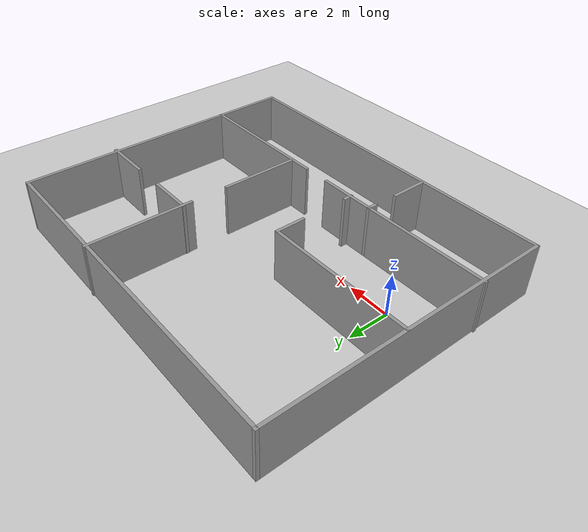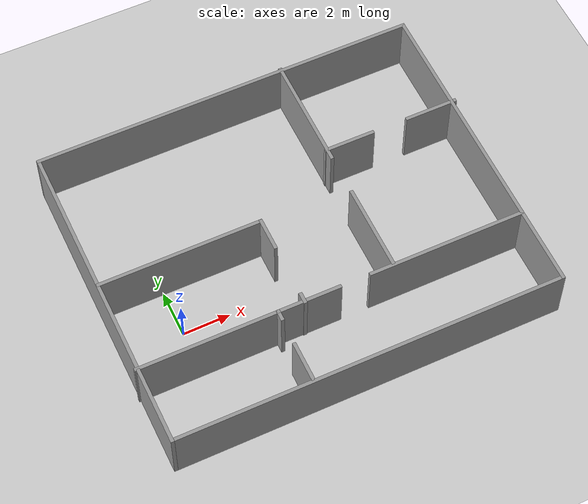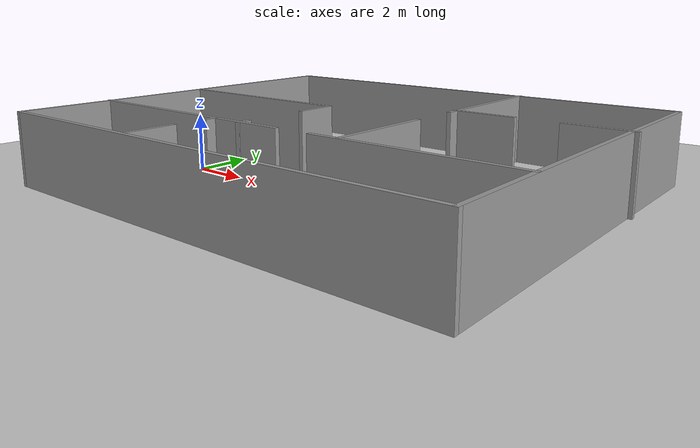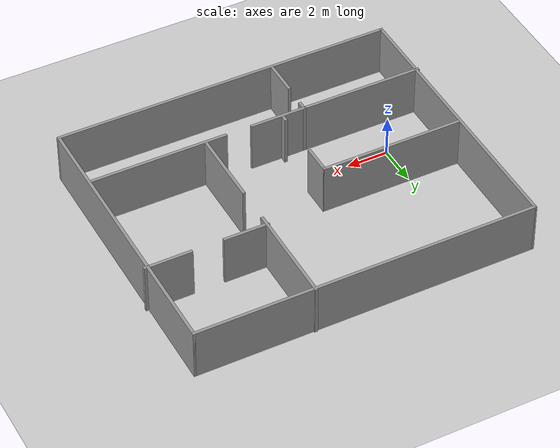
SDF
<sdf version="1.7">
 <world name="default">
  <light name="sun" type="directional">
   <pose>0 0 10 0 -0 0</pose>
   <diffuse>0.8 0.8 0.8 1</diffuse>
   <specular>0.2 0.2 0.2 1</specular>
   <attenuation>
    <range>1000</range>
    <constant>0.9</constant>
    <linear>0.01</linear>
    <quadratic>0.001</quadratic>
   </attenuation>
   <direction>-0.5 0.1 -0.9</direction>
   <spot><inner_angle>0</inner_angle><outer_angle>0</outer_angle><falloff>0</falloff></spot>
  </light>
  <model name="ground_plane">
   <static>1</static>
   <link name="link">
    <collision name="collision">
     <geometry><plane><normal>0 0 1</normal><size>100 100</size></plane></geometry>
     <surface>
      <contact><collide_bitmask>65535</collide_bitmask></contact>
      <friction><ode><mu>100</mu><mu2>50</mu2></ode></friction>
     </surface>
    </collision>
    <visual name="visual">
     <cast_shadows>0</cast_shadows>
     <geometry><plane><normal>0 0 1</normal><size>100 100</size></plane></geometry>
     <material>
      <script><uri>file://media/materials/scripts/gazebo.material</uri><name>Gazebo/Grey</name></script>
     </material>
    </visual>
   </link>
  </model>
  <gravity>0 0 -9.8</gravity>
  <magnetic_field>6e-06 2.3e-05 -4.2e-05</magnetic_field>
  <atmosphere type="adiabatic"/>
  <physics type="ode">
   <max_step_size>0.001</max_step_size>
   <real_time_factor>1</real_time_factor>
   <real_time_update_rate>1000</real_time_update_rate>
  </physics>
  <scene><ambient>0.4 0.4 0.4 1</ambient><background>0.7 0.7 0.7 1</background><shadows>1</shadows></scene>
  <audio><device>default</device></audio>
  <spherical_coordinates>
   <surface_model>EARTH_WGS84</surface_model>
   <latitude_deg>0</latitude_deg>
   <longitude_deg>0</longitude_deg>
   <elevation>0</elevation>
   <heading_deg>0</heading_deg>
  </spherical_coordinates>
  <model name="Flat">
   <pose>5.64456 1.61458 0 0 -0 0</pose>
   <link name="Wall_1">
    <collision name="Wall_1_Collision">
     <geometry><box><size>16.5 0.15 2.5</size></box></geometry>
     <pose>0 0 1.25 0 -0 0</pose>
    </collision>
    <visual name="Wall_1_Visual">
     <pose>0 0 1.25 0 -0 0</pose>
     <geometry><box><size>16.5 0.15 2.5</size></box></geometry>
     <material>
      <script><uri>file://media/materials/scripts/gazebo.material</uri><name>Gazebo/Grey</name></script>
      <ambient>1 1 1 1</ambient>
     </material>
     <meta><layer>0</layer></meta>
    </visual>
    <pose>-0.031794 6.77215 0 0 -0 0</pose>
   </link>
   <link name="Wall_10">
    <collision name="Wall_10_Collision">
     <geometry><box><size>0.5 0.15 2.5</size></box></geometry>
     <pose>0 0 1.25 0 -0 0</pose>
    </collision>
    <visual name="Wall_10_Visual">
     <pose>0 0 1.25 0 -0 0</pose>
     <geometry><box><size>0.5 0.15 2.5</size></box></geometry>
     <material>
      <script><uri>file://media/materials/scripts/gazebo.material</uri><name>Gazebo/Grey</name></script>
      <ambient>1 1 1 1</ambient>
     </material>
     <meta><layer>0</layer></meta>
    </visual>
    <pose>-2.42245 -3.74352 0 0 -0 -1.5708</pose>
   </link>
   <link name="Wall_15">
    <collision name="Wall_15_Collision">
     <geometry><box><size>1.75 0.15 2.5</size></box></geometry>
     <pose>0 0 1.25 0 -0 0</pose>
    </collision>
    <visual name="Wall_15_Visual">
     <pose>0 0 1.25 0 -0 0</pose>
     <geometry><box><size>1.75 0.15 2.5</size></box></geometry>
     <material>
      <script><uri>file://media/materials/scripts/gazebo.material</uri><name>Gazebo/Grey</name></script>
      <ambient>1 1 1 1</ambient>
     </material>
     <meta><layer>0</layer></meta>
    </visual>
    <pose>-2.46159 -5.91852 0 0 -0 1.5708</pose>
   </link>
   <link name="Wall_17">
    <collision name="Wall_17_Collision">
     <geometry><box><size>2.75 0.15 2.5</size></box></geometry>
     <pose>0 0 1.25 0 -0 0</pose>
    </collision>
    <visual name="Wall_17_Visual">
     <pose>0 0 1.25 0 -0 0</pose>
     <geometry><box><size>2.75 0.15 2.5</size></box></geometry>
     <material>
      <script><uri>file://media/materials/scripts/gazebo.material</uri><name>Gazebo/Grey</name></script>
      <ambient>1 1 1 1</ambient>
     </material>
     <meta><layer>0</layer></meta>
    </visual>
    <pose>-1.12245 -3.56853 0 0 -0 0</pose>
   </link>
   <link name="Wall_19">
    <collision name="Wall_19_Collision">
     <geometry><box><size>6.75 0.15 2.5</size></box></geometry>
     <pose>0 0 1.25 0 -0 0</pose>
    </collision>
    <visual name="Wall_19_Visual">
     <pose>0 0 1.25 0 -0 0</pose>
     <geometry><box><size>6.75 0.15 2.5</size></box></geometry>
     <material>
      <script><uri>file://media/materials/scripts/gazebo.material</uri><name>Gazebo/Grey</name></script>
      <ambient>1 1 1 1</ambient>
     </material>
     <meta><layer>0</layer></meta>
    </visual>
    <pose>4.82754 -3.56853 0 0 -0 0</pose>
   </link>
   <link name="Wall_2">
    <collision name="Wall_2_Collision">
     <geometry><box><size>13.75 0.15 2.5</size></box></geometry>
     <pose>0 0 1.25 0 -0 0</pose>
    </collision>
    <visual name="Wall_2_Visual">
     <pose>0 0 1.25 0 -0 0</pose>
     <geometry><box><size>13.75 0.15 2.5</size></box></geometry>
     <material>
      <script><uri>file://media/materials/scripts/gazebo.material</uri><name>Gazebo/Grey</name></script>
      <ambient>1 1 1 1</ambient>
     </material>
     <meta><layer>0</layer></meta>
    </visual>
    <pose>8.14321 -0.027847 0 0 -0 -1.5708</pose>
   </link>
   <link name="Wall_21">
    <collision name="Wall_21_Collision">
     <geometry><box><size>5 0.15 2.5</size></box></geometry>
     <pose>0 0 1.25 0 -0 0</pose>
    </collision>
    <visual name="Wall_21_Visual">
     <pose>0 0 1.25 0 -0 0</pose>
     <geometry><box><size>5 0.15 2.5</size></box></geometry>
     <material>
      <script><uri>file://media/materials/scripts/gazebo.material</uri><name>Gazebo/Grey</name></script>
      <ambient>1 1 1 1</ambient>
     </material>
     <meta><layer>0</layer></meta>
    </visual>
    <pose>2.50382 4.40285 0 0 -0 -1.5708</pose>
   </link>
   <link name="Wall_23">
    <collision name="Wall_23_Collision">
     <geometry><box><size>3.75 0.15 2.5</size></box></geometry>
     <pose>0 0 1.25 0 -0 0</pose>
    </collision>
    <visual name="Wall_23_Visual">
     <pose>0 0 1.25 0 -0 0</pose>
     <geometry><box><size>3.75 0.15 2.5</size></box></geometry>
     <material>
      <script><uri>file://media/materials/scripts/gazebo.material</uri><name>Gazebo/Grey</name></script>
      <ambient>1 1 1 1</ambient>
     </material>
     <meta><layer>0</layer></meta>
    </visual>
    <pose>2.50382 -1.67215 0 0 -0 -1.5708</pose>
   </link>
   <link name="Wall_25">
    <collision name="Wall_25_Collision">
     <geometry><box><size>2.20278 0.15 2.5</size></box></geometry>
     <pose>0 0 1.25 0 -0 0</pose>
    </collision>
    <visual name="Wall_25_Visual">
     <pose>0 0 1.25 0 -0 0</pose>
     <geometry><box><size>2.20278 0.15 2.5</size></box></geometry>
     <material>
      <script><uri>file://media/materials/scripts/gazebo.material</uri><name>Gazebo/Grey</name></script>
      <ambient>1 1 1 1</ambient>
     </material>
     <meta><layer>0</layer></meta>
    </visual>
    <pose>3.49877 2.3881 0 0 -0 -0.001083</pose>
   </link>
   <link name="Wall_27">
    <collision name="Wall_27_Collision">
     <geometry><box><size>2.29722 0.15 2.5</size></box></geometry>
     <pose>0 0 1.25 0 -0 0</pose>
    </collision>
    <visual name="Wall_27_Visual">
     <pose>0 0 1.25 0 -0 0</pose>
     <geometry><box><size>2.29722 0.15 2.5</size></box></geometry>
     <material>
      <script><uri>file://media/materials/scripts/gazebo.material</uri><name>Gazebo/Grey</name></script>
      <ambient>1 1 1 1</ambient>
     </material>
     <meta><layer>0</layer></meta>
    </visual>
    <pose>7.19877 2.3881 0 0 -0 0.001035</pose>
   </link>
   <link name="Wall_3">
    <collision name="Wall_3_Collision">
     <geometry><box><size>16.5 0.15 2.5</size></box></geometry>
     <pose>0 0 1.25 0 -0 0</pose>
    </collision>
    <visual name="Wall_3_Visual">
     <pose>0 0 1.25 0 -0 0</pose>
     <geometry><box><size>16.5 0.15 2.5</size></box></geometry>
     <material>
      <script><uri>file://media/materials/scripts/gazebo.material</uri><name>Gazebo/Grey</name></script>
      <ambient>1 1 1 1</ambient>
     </material>
     <meta><layer>0</layer></meta>
    </visual>
    <pose>-0.031794 -6.82785 0 0 -0 3.14159</pose>
   </link>
   <link name="Wall_35">
    <collision name="Wall_35_Collision">
     <geometry><box><size>7 0.15 2.5</size></box></geometry>
     <pose>0 0 1.25 0 -0 0</pose>
    </collision>
    <visual name="Wall_35_Visual">
     <pose>0 0 1.25 0 -0 0</pose>
     <geometry><box><size>7 0.15 2.5</size></box></geometry>
     <material>
      <script><uri>file://media/materials/scripts/gazebo.material</uri><name>Gazebo/Grey</name></script>
      <ambient>1 1 1 1</ambient>
     </material>
     <meta><layer>0</layer></meta>
    </visual>
    <pose>-4.76185 0.429528 0 0 -0 0</pose>
   </link>
   <link name="Wall_36">
    <collision name="Wall_36_Collision">
     <geometry><box><size>1.46542 0.15 2.5</size></box></geometry>
     <pose>0 0 1.25 0 -0 0</pose>
    </collision>
    <visual name="Wall_36_Visual">
     <pose>0 0 1.25 0 -0 0</pose>
     <geometry><box><size>1.46542 0.15 2.5</size></box></geometry>
     <material>
      <script><uri>file://media/materials/scripts/gazebo.material</uri><name>Gazebo/Grey</name></script>
      <ambient>1 1 1 1</ambient>
     </material>
     <meta><layer>0</layer></meta>
    </visual>
    <pose>-1.3193 -0.245733 0 0 -0 -1.5708</pose>
   </link>
   <link name="Wall_38">
    <collision name="Wall_38_Collision">
     <geometry><box><size>0.5 0.15 2.5</size></box></geometry>
     <pose>0 0 1.25 0 -0 0</pose>
    </collision>
    <visual name="Wall_38_Visual">
     <pose>0 0 1.25 0 -0 0</pose>
     <geometry><box><size>0.5 0.15 2.5</size></box></geometry>
     <material>
      <script><uri>file://media/materials/scripts/gazebo.material</uri><name>Gazebo/Grey</name></script>
      <ambient>1 1 1 1</ambient>
     </material>
     <meta><layer>0</layer></meta>
    </visual>
    <pose>-1.3193 -3.42844 0 0 -0 -1.5708</pose>
   </link>
   <link name="Wall_6">
    <collision name="Wall_6_Collision">
     <geometry><box><size>13.75 0.15 2.5</size></box></geometry>
     <pose>0 0 1.25 0 -0 0</pose>
    </collision>
    <visual name="Wall_6_Visual">
     <pose>0 0 1.25 0 -0 0</pose>
     <geometry><box><size>13.75 0.15 2.5</size></box></geometry>
     <material>
      <script><uri>file://media/materials/scripts/gazebo.material</uri><name>Gazebo/Grey</name></script>
      <ambient>1 1 1 1</ambient>
     </material>
     <meta><layer>0</layer></meta>
    </visual>
    <pose>-8.20679 -0.027847 0 0 -0 -1.5708</pose>
   </link>
   <link name="Wall_8">
    <collision name="Wall_8_Collision">
     <geometry><box><size>6 0.15 2.5</size></box></geometry>
     <pose>0 0 1.25 0 -0 0</pose>
    </collision>
    <visual name="Wall_8_Visual">
     <pose>0 0 1.25 0 -0 0</pose>
     <geometry><box><size>6 0.15 2.5</size></box></geometry>
     <material>
      <script><uri>file://media/materials/scripts/gazebo.material</uri><name>Gazebo/Grey</name></script>
      <ambient>1 1 1 1</ambient>
     </material>
     <meta><layer>0</layer></meta>
    </visual>
    <pose>-5.34746 -3.56853 0 0 -0 0</pose>
   </link>
   <static>1</static>
  </model>
 </world>
</sdf>
